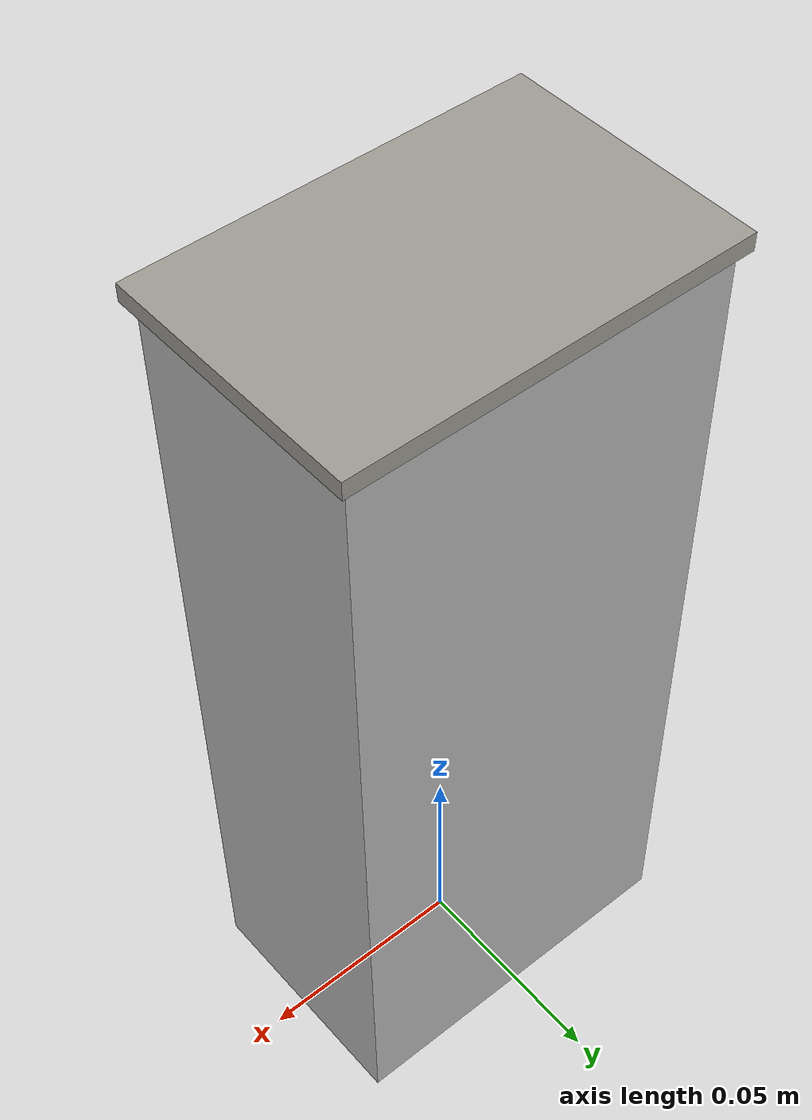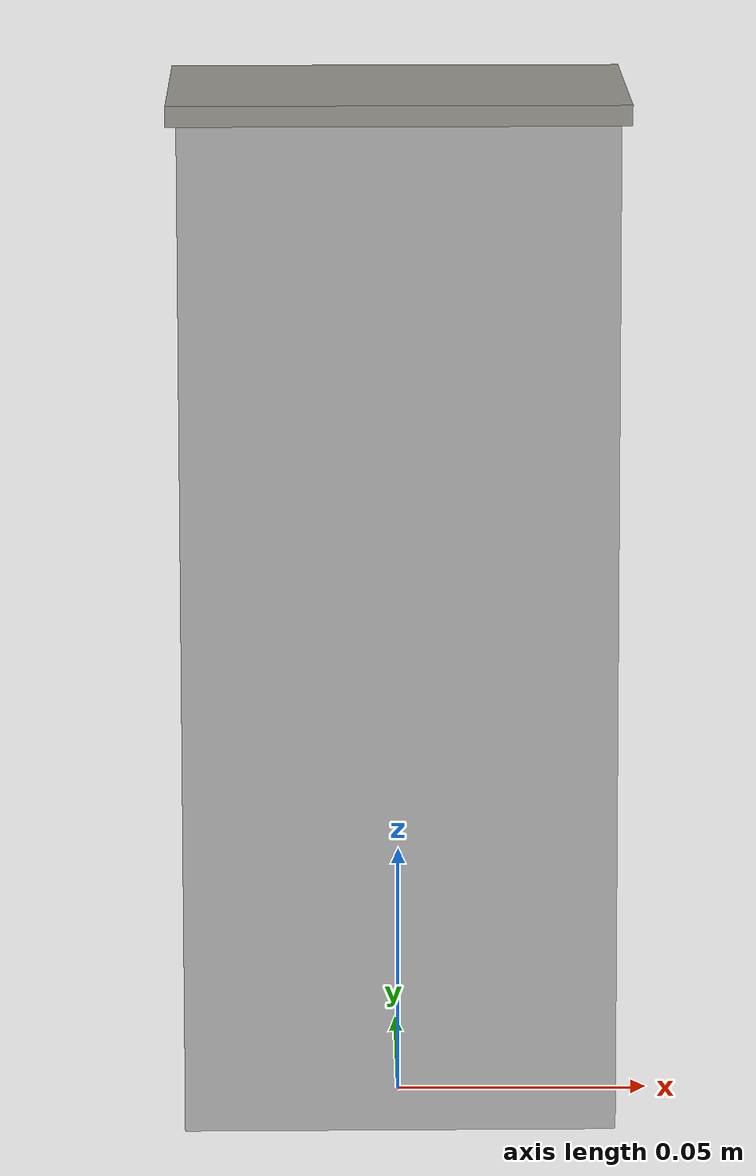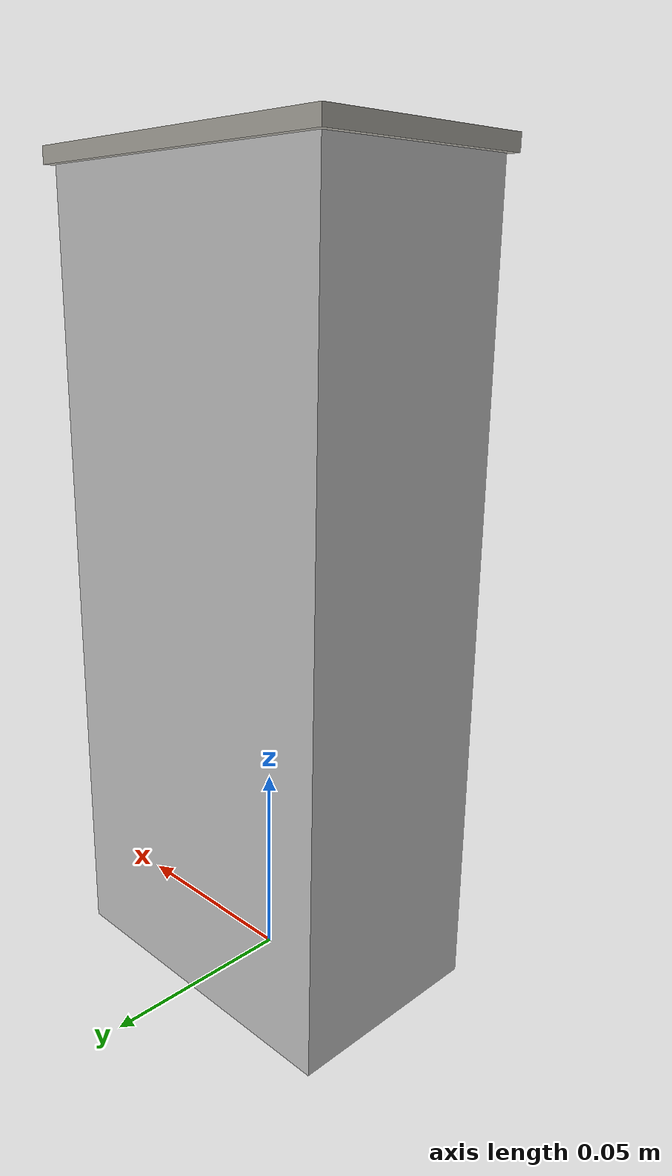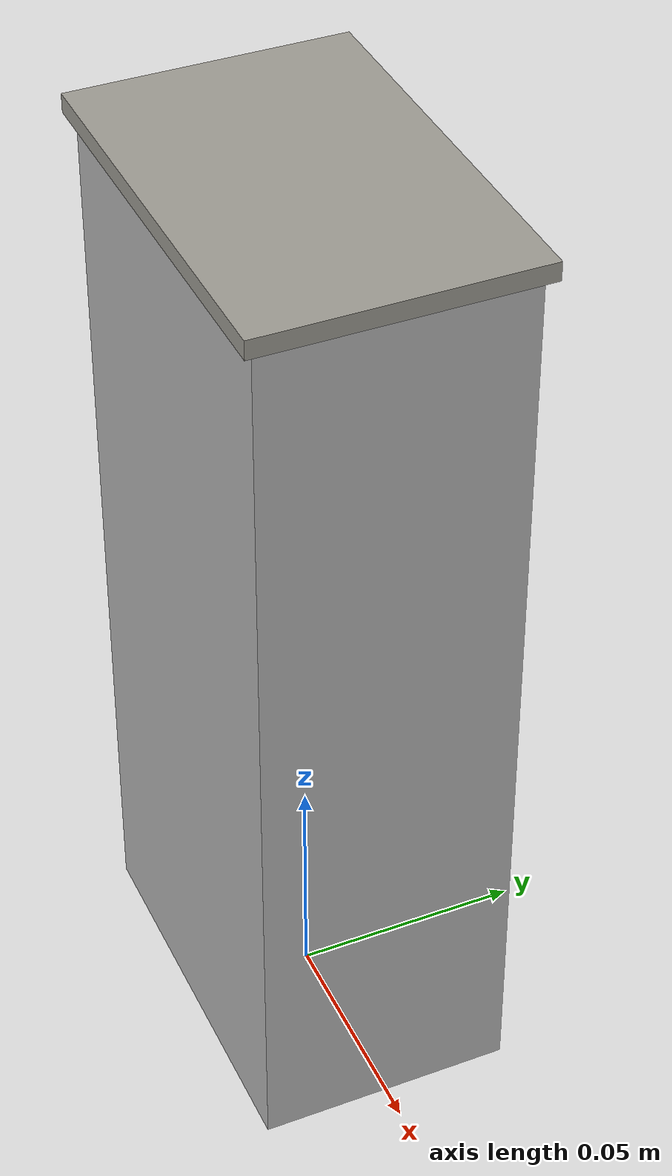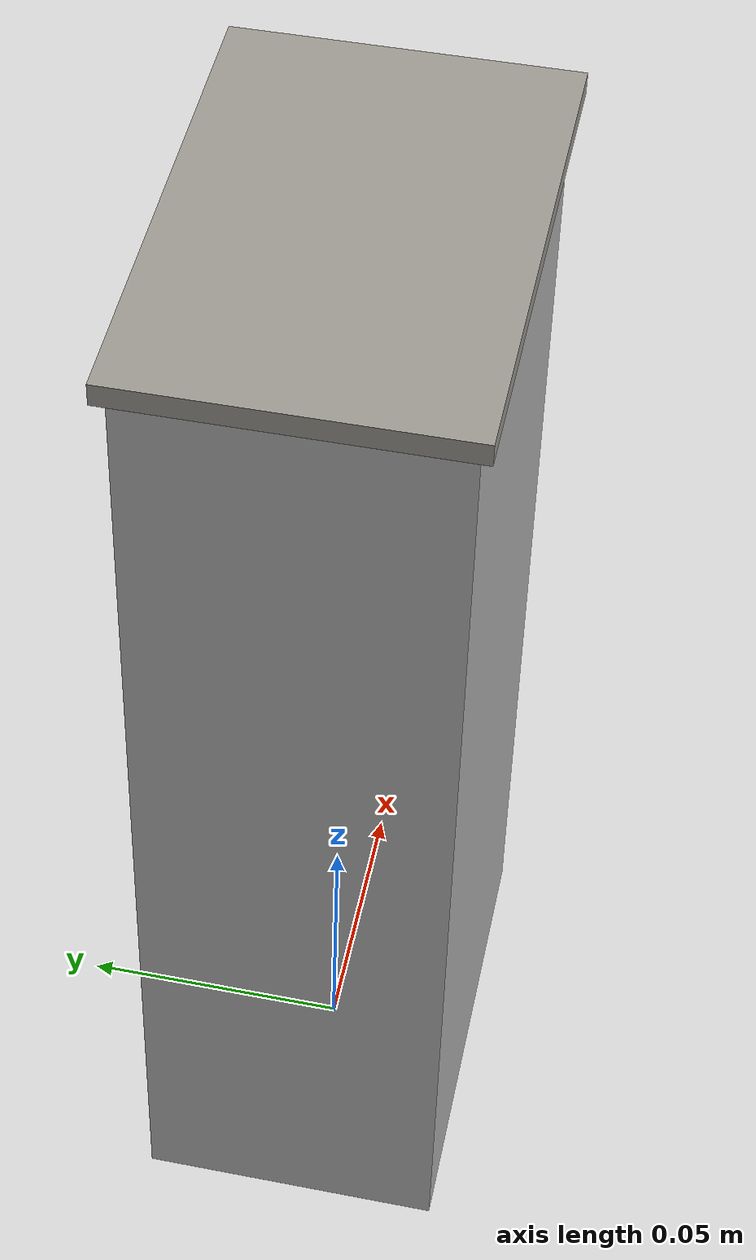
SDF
<?xml version="1.0"?>
<sdf version="1.7">
  <model name="bldg_20">
    <static>true</static>
    <link name="link">
<visual name="mass"><pose>0 0 0.1000 0 0 0</pose><geometry><box><size>0.0850 0.0550 0.2000</size></box></geometry><material><script><uri>model://bldg_20/materials/scripts</uri><uri>model://bldg_20/materials/textures</uri><name>Facade</name></script></material></visual>
      <collision name="mass_c_c"><pose>0 0 0.1000 0 0 0</pose><geometry><box><size>0.0850 0.0550 0.2000</size></box></geometry></collision>
      <visual name="roof"><pose>0 0 0.2020 0 0 0</pose><geometry><box><size>0.0890 0.0590 0.004</size></box></geometry><material><ambient>0.62 0.61 0.58 1</ambient><diffuse>0.62 0.61 0.58 1</diffuse></material></visual>
    </link>
  </model>
</sdf>
